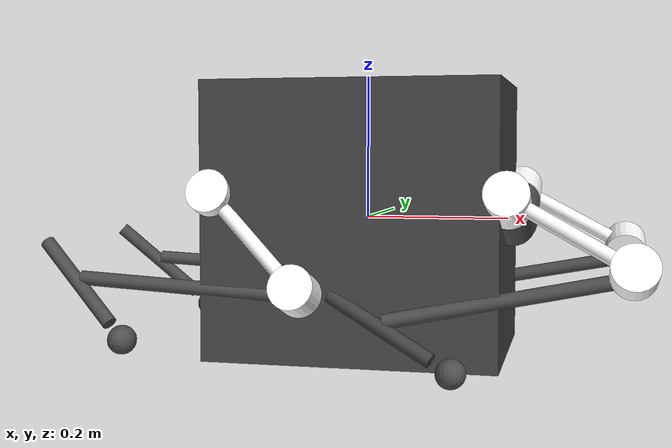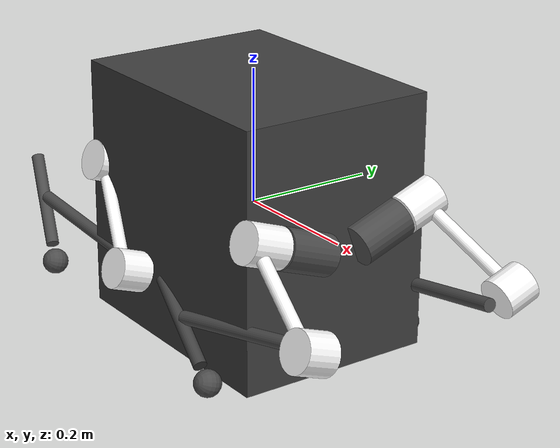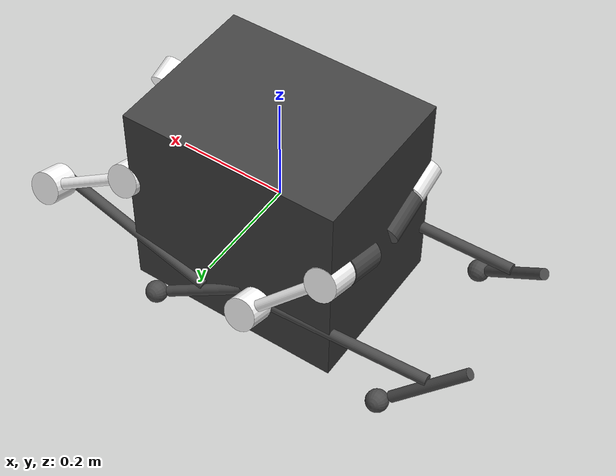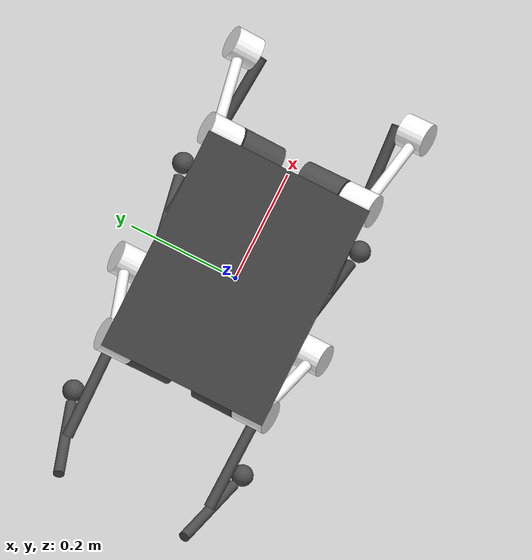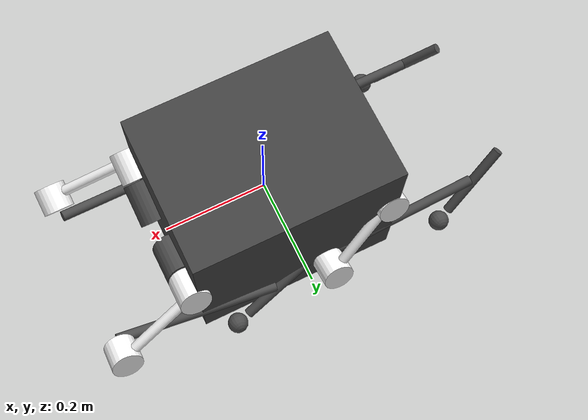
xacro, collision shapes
<?xml version="1.0" encoding="utf-8"?>
<robot xmlns:xacro="http://www.ros.org/wiki/xacro" name="husky">

  <!--aug 14 crouched husky no walls-->

  <xacro:arg name="robot_type" default="husky"/>

  <xacro:property name="motor_damping" value="0" />
  <xacro:property name="free_joint_damping" value="0" />

  <xacro:property name="motor_sfriction" value="0" />
  <xacro:property name="free_joint_sfriction" value="0" />

  <xacro:property name="efflim" value="33.5" />

  <xacro:property name="r_hip_frontal_ipos" value="${-10*pi/180}" />
  <xacro:property name="r_hip_frontal_lowlim" value="${-10*pi/180}" />
  <xacro:property name="r_hip_frontal_uplim" value="${-10*pi/180}" />
  <xacro:property name="l_hip_frontal_ipos" value="${100*pi/180}" />
  <xacro:property name="l_hip_frontal_lowlim" value="${100*pi/180}" />
  <xacro:property name="l_hip_frontal_uplim" value="${100*pi/180}" />

  <xacro:property name="r_axis" value="1" />
  <xacro:property name="l_axis" value="1" />

  <gazebo>
  <plugin filename="liblegged_hw_sim.so" name="gazebo_ros_control">
    <robotNamespace>/</robotNamespace>
    <robotParam>legged_robot_description</robotParam>
    <robotSimType>legged_gazebo/LeggedHWSim</robotSimType>
  </plugin>

  <plugin filename="libgazebo_ros_p3d.so" name="p3d_base_controller">
    <alwaysOn>true</alwaysOn>
    <updateRate>1000.0</updateRate>
    <bodyName>base</bodyName>
    <topicName>ground_truth/state</topicName>
    <gaussianNoise>0</gaussianNoise>
    <frameName>world</frameName>
    <xyzOffsets>0 0 0</xyzOffsets>
    <rpyOffsets>0 0 0</rpyOffsets>
  </plugin>
  </gazebo>

  <!-- Imu is fixed to the base link -->
  <joint name="unitree_imu_joint" type="fixed">
    <origin rpy="0. 0. 0." xyz="0. 0. 0."/>
    <parent link="base"/>
    <child link="unitree_imu"/>
  </joint>
  <!-- Imu link -->
  <link name="unitree_imu">
    <inertial>
      <mass value="0.01"/>
      <origin rpy="0 0 0" xyz="0 0 0"/>
      <inertia ixx="0.000001" ixy="0" ixz="0" iyy="0.000001" iyz="0" izz="0.000001"/>
    </inertial>
    <visual>
      <origin rpy="0 0 0" xyz="0 0 0"/>
      <geometry>
        <box size="0.015 0.015 0.004"/>
      </geometry>
    </visual>
  </link>
  <gazebo reference="unitree_imu">
    <material>Gazebo/Orange</material>
  </gazebo>
  <gazebo reference="unitree_imu_joint">
    <disableFixedJointLumping>true</disableFixedJointLumping>
  </gazebo>

  <joint name="RF_HAA" type="revolute">
    <parent link="base"/>
    <child link="RF_hip"/>
    <origin rpy="-1.5708 ${r_hip_frontal_ipos} -1.5708"    xyz="0.2087 -0.045 0.0001"/>
    <axis xyz="0.0 0.0 1.0" />
    <dynamics damping="${motor_damping}" friction="${motor_sfriction}"/>
    <limit effort="${efflim}" lower="${r_hip_frontal_lowlim}" upper="${r_hip_frontal_uplim}" velocity="8.7267"/>
  </joint>

  <joint name="LF_HAA" type="revolute">
    <parent link="base"/>
    <child link="LF_hip"/>
    <origin rpy="-1.5708 ${l_hip_frontal_ipos} -1.5708"    xyz="0.2087 0.045 0.0001"/>
    <axis xyz="0.0 0.0 1.0" />
    <dynamics damping="${motor_damping}" friction="${motor_sfriction}"/>
    <limit effort="${efflim}" lower="${l_hip_frontal_lowlim}" upper="${l_hip_frontal_uplim}" velocity="8.7267"/>
  </joint>

  <joint name="LH_HAA" type="revolute">
    <parent link="base"/>
    <child link="LH_hip"/>
    <origin rpy="-1.5708 ${l_hip_frontal_ipos} -1.5708"    xyz="-0.1862 0.045 0.0002"/>
    <axis xyz="0 0 1" />
    <dynamics damping="${motor_damping}" friction="${motor_sfriction}"/>
    <limit effort="${efflim}" lower="${l_hip_frontal_lowlim}" upper="${l_hip_frontal_uplim}" velocity="8.7267"/>
  </joint>

  <joint name="RH_HAA" type="revolute">
    <parent link="base"/>
    <child link="RH_hip"/>
    <origin rpy="-1.5708 ${r_hip_frontal_ipos} -1.5708"    xyz="-0.1862 -0.045 0.0002"/>
    <axis xyz="0 0 1" />
    <dynamics damping="${motor_damping}" friction="${motor_sfriction}"/>
    <limit effort="${efflim}" lower="${r_hip_frontal_lowlim}" upper="${r_hip_frontal_uplim}" velocity="8.7267"/>
  </joint>

  <xacro:property name="fr_hip_sagittal_ipos" value="-2.0944" />
  <xacro:property name="fr_hip_sagittal_lowlim" value="-0.7854" />
  <xacro:property name="fr_hip_sagittal_uplim" value="0" />
  <xacro:property name="fl_hip_sagittal_ipos" value="-1.0472" />
  <xacro:property name="fl_hip_sagittal_lowlim" value="0" />
  <xacro:property name="fl_hip_sagittal_uplim" value="0.7854" />

  <xacro:property name="br_hip_sagittal_ipos" value="-2.356" />
  <xacro:property name="br_hip_sagittal_lowlim" value="-0.7854" />
  <xacro:property name="br_hip_sagittal_uplim" value="0" />
  <xacro:property name="bl_hip_sagittal_ipos" value="-0.7854" />
  <xacro:property name="bl_hip_sagittal_lowlim" value="0" />
  <xacro:property name="bl_hip_sagittal_uplim" value="0.7854" />

  <joint name="RF_HFE" type="revolute">
    <parent link="RF_hip"/>
    <child link="RF_thigh"/>
    <origin rpy="-1.5708 ${fr_hip_sagittal_ipos} -1.5708"   xyz="0.1031 0.0 0.0"/>
    <axis xyz="0.0 0 ${r_axis}" />
    <dynamics damping="${motor_damping}" friction="${motor_sfriction}"/>
    <limit effort="${efflim}" lower="${fr_hip_sagittal_lowlim}" upper="${fr_hip_sagittal_uplim}" velocity="8.7267"/>
  </joint>

  <joint name="LF_HFE" type="revolute">
    <parent link="LF_hip"/>
    <child link="LF_thigh"/>
    <origin rpy="-1.5708 ${fl_hip_sagittal_ipos} -1.5708"   xyz="0.1031 0.0 0.0"/>
    <axis xyz="0 0.0 ${l_axis}" />
    <dynamics damping="${motor_damping}" friction="${motor_sfriction}"/>
    <limit effort="${efflim}" lower="${fl_hip_sagittal_lowlim}" upper="${fl_hip_sagittal_uplim}" velocity="8.7267"/>
  </joint>

  <joint name="LH_HFE" type="revolute">
    <parent link="LH_hip"/>
    <child link="LH_thigh"/>
    <origin rpy="-1.5708 ${bl_hip_sagittal_ipos} -1.5708"   xyz="0.1031 0.0 0.0"/>
    <axis xyz="0.0 0.0 ${l_axis}" />
    <dynamics damping="${motor_damping}" friction="${motor_sfriction}"/>
    <limit effort="${efflim}" lower="${bl_hip_sagittal_lowlim}" upper="${bl_hip_sagittal_uplim}" velocity="8.7267"/>
  </joint>

  <joint name="RH_HFE" type="revolute">
    <parent link="RH_hip"/>
    <child link="RH_thigh"/>
    <origin rpy="-1.5708 ${br_hip_sagittal_ipos} -1.5708"   xyz="0.1031 0.0 0.0"/>
    <axis xyz="0.0 0 ${r_axis}" />
    <dynamics damping="${motor_damping}" friction="${motor_sfriction}"/>
    <limit effort="${efflim}" lower="${br_hip_sagittal_lowlim}" upper="${br_hip_sagittal_uplim}" velocity="8.7267"/>
  </joint>

  <xacro:property name="r_knee_ipos" value="-2.4113" />
  <xacro:property name="r_knee_lowlim" value="-0." />
  <xacro:property name="r_knee_uplim" value="1.0472" />
  <xacro:property name="l_knee_ipos" value="2.4113" />
  <xacro:property name="l_knee_lowlim" value="-1.0472" />
  <xacro:property name="l_knee_uplim" value="0." />

  <joint name="RF_KFE" type="revolute">
    <parent link="RF_thigh"/>
    <child link="RF_calf"/>
    <origin rpy="0 0 ${r_knee_ipos}"   xyz="0.18 0.0 -0.0431"/>
    <axis xyz="0.0 0.0 ${r_axis}" />
    <dynamics damping="${motor_damping}" friction="${motor_sfriction}"/>
    <limit effort="${efflim}" lower="${r_knee_lowlim}" upper="${r_knee_uplim}" velocity="8.7267"/>
  </joint>

  <joint name="LF_KFE" type="revolute">
    <parent link="LF_thigh"/>
    <child link="LF_calf"/>
    <origin rpy="0 0 ${l_knee_ipos}"   xyz="0.18 0.0 -0.0431"/>
    <axis xyz="0.0 0.0 ${l_axis}" />
    <dynamics damping="${motor_damping}" friction="${motor_sfriction}"/>
    <limit effort="${efflim}" lower="${l_knee_lowlim}" upper="${l_knee_uplim}" velocity="8.7267"/>
  </joint>

  <joint name="LH_KFE" type="revolute">
    <parent link="LH_thigh"/>
    <child link="LH_calf"/>
    <origin rpy="0 0 ${l_knee_ipos}"   xyz="0.18 0.0 -0.0431"/>
    <axis xyz="0.0 0.0 ${l_axis}" />
    <dynamics damping="${motor_damping}" friction="${motor_sfriction}"/>
    <limit effort="${efflim}" lower="${l_knee_lowlim}" upper="${l_knee_uplim}" velocity="8.7267"/>
  </joint>

  <joint name="RH_KFE" type="revolute">
    <parent link="RH_thigh"/>
    <child link="RH_calf"/>
    <origin rpy="0 0 ${r_knee_ipos}"   xyz="0.18 0.0 -0.0431"/>
    <axis xyz="0.0 0.0 ${r_axis}" />
    <dynamics damping="${motor_damping}" friction="${motor_sfriction}"/>
    <limit effort="${efflim}" lower="${r_knee_lowlim}" upper="${r_knee_uplim}" velocity="8.7267"/>
  </joint>

  <!--ANKLES-->

  <xacro:property name="l_ankle_lowlim" value="-1.5708" />
  <xacro:property name="l_ankle_uplim" value="1.5708" />
  <xacro:property name="r_ankle_lowlim" value="-1.5708" />
  <xacro:property name="r_ankle_uplim" value="1.5708" />

  <!--REAL FOOT SECTION 1/3 (COMMENT THIS IN, COMMENT BELOW OUT)-->
  <joint name="RF_ankle" type="revolute">
    <parent link="RF_calf"/>
    <child link="RF_fut"/>
    <origin rpy="0 0 ${l_knee_ipos}"   xyz="0.333 0.0 0.0"/>
    <axis xyz="0.0 0.0 1.0" />
    <dynamics damping="${free_joint_damping}" friction="${motor_sfriction}"/>
    <limit effort="${efflim}" lower="${r_ankle_lowlim}" upper="${r_ankle_uplim}" velocity="8.7267"/>
  </joint>

  <joint name="LF_ankle" type="revolute">
    <parent link="LF_calf"/>
    <child link="LF_fut"/>
    <origin rpy="0 0 ${r_knee_ipos}"   xyz="0.333 0.0 0.0"/>
    <axis xyz="0.0 0.0 1.0" />
    <dynamics damping="${free_joint_damping}" friction="${motor_sfriction}"/>
    <limit effort="${efflim}" lower="${l_ankle_lowlim}" upper="${l_ankle_uplim}" velocity="8.7267"/>
  </joint>

  <joint name="LH_ankle" type="revolute">
    <parent link="LH_calf"/>
    <child link="LH_fut"/>
    <origin rpy="0 0 ${r_knee_ipos}"   xyz="0.333 0.0 0.0"/>
    <axis xyz="0.0 0.0 1.0" />
    <dynamics damping="${free_joint_damping}" friction="${motor_sfriction}"/>
    <limit effort="${efflim}" lower="${l_ankle_lowlim}" upper="${l_ankle_uplim}" velocity="8.7267"/>
  </joint>

  <joint name="RH_ankle" type="revolute">
    <parent link="RH_calf"/>
    <child link="RH_fut"/>
    <origin rpy="0 0 ${l_knee_ipos}"   xyz="0.333 0.0 0.0"/>
    <axis xyz="0.0 0.0 1.0" />
    <dynamics damping="${free_joint_damping}" friction="${motor_sfriction}"/>
    <limit effort="${efflim}" lower="${r_ankle_lowlim}" upper="${r_ankle_uplim}" velocity="8.7267"/>
  </joint>

  <joint name="RF_foot_fixed" type="fixed">
    <parent link="RF_fut"/>
    <child link="RF_FOOT"/>
    <origin rpy="0 0 0"   xyz="0.0 0.0 0.0"/>
  </joint>

  <joint name="LF_foot_fixed" type="fixed">
    <parent link="LF_fut"/>
    <child link="LF_FOOT"/>
    <origin rpy="0 0 0"   xyz="0.0 0.0 0.0"/>
  </joint>

  <joint name="LH_foot_fixed" type="fixed">
    <parent link="LH_fut"/>
    <child link="LH_FOOT"/>
    <origin rpy="0 0 0"   xyz="0.0 0.0 0.0"/>
  </joint>

  <joint name="RH_foot_fixed" type="fixed">
    <parent link="RH_fut"/>
    <child link="RH_FOOT"/>
    <origin rpy="0 0 0"   xyz="0.0 0.0 0.0"/>
  </joint>
  -->
  <!--REAL FOOT SECTION END-->

  <!--NUB FOOT SECTION (COMMENT THIS IN, COMMENT ABOVE OUT)-->
  <!--NUB FOOT SECTION END-->

  <gazebo reference="RF_foot_fixed">
    <disableFixedJointLumping>true</disableFixedJointLumping>
  </gazebo>

  <gazebo reference="LF_foot_fixed">
    <disableFixedJointLumping>true</disableFixedJointLumping>
  </gazebo>

  <gazebo reference="LH_foot_fixed">
    <disableFixedJointLumping>true</disableFixedJointLumping>
  </gazebo>

  <gazebo reference="RH_foot_fixed">
    <disableFixedJointLumping>true</disableFixedJointLumping>
  </gazebo>

  <!--LINKS-->
  <link name="base">
    <inertial>
      <mass value="3.1895"/>
      <origin rpy="0.0 0.0 -1.5708" xyz="-0.0301 -0.0001 0.0241"/>
      <inertia ixx="0.0170990623" ixy="3.09e-08" ixz="-5.394e-07" iyy="0.0115476717" iyz="4.77948e-05" izz="0.0268461573"/>
    </inertial>
    <collision>
      <origin rpy="0 0 0" xyz="0 0 0"/>
      <geometry>
        <box size="0.4 0.3 0.38"/>
      </geometry>
    </collision>
    <visual name="base_visual">
      <origin rpy="0.0 0.0 -1.571" xyz="0.0 0.0 0.0"/>
      <geometry>
        <mesh filename="package://husky_description/meshes/body_link.STL" scale="1 1 1"/>
      </geometry>
      <material name="">
        <color rgba="0.251 0.251 0.251 1.0"/>
      </material>
    </visual>
  </link>

  <xacro:property name="hip_ix" value="0.02" />
  <xacro:property name="hip_length" value="0.08" />
  <xacro:property name="hip_radius" value="0.03" />

  <link name="RF_hip">
    <inertial>
      <mass value="0.0431"/>
      <origin rpy="3.1416 0.0 0.0" xyz="0.0236 0.0001 0.003"/>
      <inertia ixx="9.9689e-06" ixy="7.49e-08" ixz="-2.3932e-06" iyy="2.49545e-05" iyz="5.1e-09" izz="2.81284e-05"/>
    </inertial>
    <collision>
      <origin rpy="0.0 1.5708 0.0" xyz="${hip_ix} 0 0"/>
      <geometry>
        <cylinder length="${hip_length}" radius="${hip_radius}"/>
      </geometry>
    </collision>
    <visual name="RF_hip_visual">
      <origin rpy="3.1416 0.0 0.0" xyz="0.0 0.0 0.0"/>
      <geometry>
        <mesh filename="package://husky_description/meshes/fr_hip.STL" scale="1 1 1"/>
      </geometry>
      <material name="">
        <color rgba="0.298 0.298 0.298 1.0"/>
      </material>
    </visual>
  </link>

  <link name="LF_hip">
    <inertial>
      <mass value="0.0431"/>
      <origin rpy="3.1416 0.0 0.0" xyz="0.0236 0.0001 0.003"/>
      <inertia ixx="9.9689e-06" ixy="7.49e-08" ixz="-2.3932e-06" iyy="2.49545e-05" iyz="5.1e-09" izz="2.81284e-05"/>
    </inertial>
    <collision>
      <origin rpy="0.0 1.5708 0.0" xyz="${hip_ix} 0 0"/>
      <geometry>
        <cylinder length="${hip_length}" radius="${hip_radius}"/>
      </geometry>
    </collision>
    <visual name="LF_hip_visual">
      <origin rpy="3.1416 0.0 0.0" xyz="0.0 0.0 0.0"/>
      <geometry>
        <mesh filename="package://husky_description/meshes/bl_hip.STL" scale="1 1 1"/>
      </geometry>
      <material name="">
        <color rgba="0.298 0.298 0.298 1.0"/>
      </material>
    </visual>
  </link>

  <link name="LH_hip">
    <inertial>
      <mass value="0.0431"/>
      <origin rpy="3.1416 0.0 0.0" xyz="0.0236 0.0001 0.003"/>
      <inertia ixx="9.9689e-06" ixy="7.49e-08" ixz="-2.3932e-06" iyy="2.49545e-05" iyz="5.1e-09" izz="2.81284e-05"/>
    </inertial>
    <collision>
      <origin rpy="0.0 1.5708 0.0" xyz="${hip_ix} 0 0"/>
      <geometry>
        <cylinder length="${hip_length}" radius="${hip_radius}"/>
      </geometry>
    </collision>
    <visual name="LH_hip_visual">
      <origin rpy="3.1416 0.0 0.0" xyz="0.0 0.0 0.0"/>
      <geometry>
        <mesh filename="package://husky_description/meshes/bl_hip.STL" scale="1 1 1"/>
      </geometry>
      <material name="">
        <color rgba="0.298 0.298 0.298 1.0"/>
      </material>
    </visual>
  </link>

  <link name="RH_hip">
    <inertial>
      <mass value="0.0431"/>
      <origin rpy="3.1416 0.0 0.0" xyz="0.0236 0.0001 0.003"/>
      <inertia ixx="9.9689e-06" ixy="7.49e-08" ixz="-2.3932e-06" iyy="2.49545e-05" iyz="5.1e-09" izz="2.81284e-05"/>
    </inertial>
    <collision>
      <origin rpy="0.0 1.5708 0.0" xyz="${hip_ix} 0 0"/>
      <geometry>
        <cylinder length="${hip_length}" radius="${hip_radius}"/>
      </geometry>
    </collision>
    <visual name="RH_hip_visual">
      <origin rpy="3.1416 0.0 0.0" xyz="0.0 0.0 0.0"/>
      <geometry>
        <mesh filename="package://husky_description/meshes/fr_hip.STL" scale="1 1 1"/>
      </geometry>
      <material name="">
        <color rgba="0.298 0.298 0.298 1.0"/>
      </material>
    </visual>
  </link>

  <gazebo reference="RF_hip">
    <mu1>0.2</mu1>
    <mu2>0.2</mu2>
    <material>Gazebo/DarkGrey</material>
  </gazebo>
  <gazebo reference="LF_hip">
    <mu1>0.2</mu1>
    <mu2>0.2</mu2>
    <material>Gazebo/DarkGrey</material>
  </gazebo>
  <gazebo reference="LH_hip">
    <mu1>0.2</mu1>
    <mu2>0.2</mu2>
    <material>Gazebo/DarkGrey</material>
  </gazebo>
  <gazebo reference="RH_hip">
    <mu1>0.2</mu1>
    <mu2>0.2</mu2>
    <material>Gazebo/DarkGrey</material>
  </gazebo>

  <xacro:property name="femur_ix" value="0.09" />
  <xacro:property name="femur_length" value="0.20" />
  <xacro:property name="femur_radius" value="0.01" />

  <xacro:property name="femur_n1_iz" value="-0.01" />
  <xacro:property name="femur_n1_length" value="0.06" />
  <xacro:property name="femur_n1_radius" value="0.03" />

  <xacro:property name="femur_n2_ix" value="0.18" />
  <xacro:property name="femur_n2_iz" value="-0.005" />
  <xacro:property name="femur_n2_length" value="0.05" />
  <xacro:property name="femur_n2_radius" value="0.03" />

  <link name="RF_thigh">
    <inertial>
      <mass value="0.3189"/>
      <origin rpy="0.0 0.0 0.0" xyz="0.1027 0.0 0.0"/>
      <inertia ixx="4.50707e-05" ixy="-1e-10" ixz="1.78e-08" iyy="9.67208e-05" iyz="4.87e-08" izz="6.39767e-05"/>
    </inertial>
    <collision>
      <origin rpy="0.0 0.0 0.0" xyz="0 0 ${femur_n1_iz}"/>
      <geometry>
        <cylinder length="${femur_n1_length}" radius="${femur_n1_radius}"/>
      </geometry>
    </collision>
    <collision>
      <origin rpy="0.0 1.5708 0.0" xyz="${femur_ix} 0 0"/>
      <geometry>
        <cylinder length="${femur_length}" radius="${femur_radius}"/>
      </geometry>
    </collision>
    <collision>
      <origin rpy="0.0 0.0 0.0" xyz="${femur_n2_ix} 0 ${femur_n2_iz}"/>
      <geometry>
        <cylinder length="${femur_n2_length}" radius="${femur_n2_radius}"/>
      </geometry>
    </collision>
    <visual name="RF_thigh_visual">
      <origin rpy="-1.5708 0.0 0.0" xyz="0.0 0.0 0.0"/>
      <geometry>
        <mesh filename="package://husky_description/meshes/fr_femur.STL" scale="1 1 1"/>
      </geometry>
      <material name="">
        <color rgba="1.0 1.0 1.0 1.0"/>
      </material>
    </visual>
  </link>

  <link name="LF_thigh">
    <inertial>
      <mass value="0.3189"/>
      <origin rpy="0.0 0.0 0.0" xyz="0.1027 0.0 0.0"/>
      <inertia ixx="4.50707e-05" ixy="-1e-10" ixz="1.78e-08" iyy="9.67208e-05" iyz="4.87e-08" izz="6.39767e-05"/>
    </inertial>
    <collision>
      <origin rpy="0.0 0.0 0.0" xyz="0 0 ${femur_n1_iz}"/>
      <geometry>
        <cylinder length="${femur_n1_length}" radius="${femur_n1_radius}"/>
      </geometry>
    </collision>
    <collision>
      <origin rpy="0.0 1.5708 0.0" xyz="${femur_ix} 0 0"/>
      <geometry>
        <cylinder length="${femur_length}" radius="${femur_radius}"/>
      </geometry>
    </collision>
    <collision>
      <origin rpy="0.0 0.0 0.0" xyz="${femur_n2_ix} 0 ${femur_n2_iz}"/>
      <geometry>
        <cylinder length="${femur_n2_length}" radius="${femur_n2_radius}"/>
      </geometry>
    </collision>
    <visual name="LF_thigh_visual">
      <origin rpy="0 0.0 0.0" xyz="0.0 0.0 0.0"/>
      <geometry>
        <mesh filename="package://husky_description/meshes/bl_femur.STL" scale="1 1 1"/>
      </geometry>
      <material name="">
        <color rgba="1.0 1.0 1.0 1.0"/>
      </material>
    </visual>
  </link>

  <link name="LH_thigh">
    <inertial>
      <mass value="0.3189"/>
      <origin rpy="0.0 0.0 0.0" xyz="0.1027 0.0 0.0"/>
      <inertia ixx="4.50707e-05" ixy="-1e-10" ixz="1.78e-08" iyy="9.67208e-05" iyz="4.87e-08" izz="6.39767e-05"/>
    </inertial>
    <collision>
      <origin rpy="0.0 0.0 0.0" xyz="0 0 ${femur_n1_iz}"/>
      <geometry>
        <cylinder length="${femur_n1_length}" radius="${femur_n1_radius}"/>
      </geometry>
    </collision>
    <collision>
      <origin rpy="0.0 1.5708 0.0" xyz="${femur_ix} 0 0"/>
      <geometry>
        <cylinder length="${femur_length}" radius="${femur_radius}"/>
      </geometry>
    </collision>
    <collision>
      <origin rpy="0.0 0.0 0.0" xyz="${femur_n2_ix} 0 ${femur_n2_iz}"/>
      <geometry>
        <cylinder length="${femur_n2_length}" radius="${femur_n2_radius}"/>
      </geometry>
    </collision>
    <visual name="LH_thigh_visual">
      <origin rpy="0 0.0 0.0" xyz="0.0 0.0 0.0"/>
      <geometry>
        <mesh filename="package://husky_description/meshes/bl_femur.STL" scale="1 1 1"/>
      </geometry>
      <material name="">
        <color rgba="1.0 1.0 1.0 1.0"/>
      </material>
    </visual>
  </link>

  <link name="RH_thigh">
    <inertial>
      <mass value="0.3189"/>
      <origin rpy="0.0 0.0 0.0" xyz="0.1027 0.0 0.0"/>
      <inertia ixx="4.50707e-05" ixy="-1e-10" ixz="1.78e-08" iyy="9.67208e-05" iyz="4.87e-08" izz="6.39767e-05"/>
    </inertial>
    <collision>
      <origin rpy="0.0 0.0 0.0" xyz="0 0 ${femur_n1_iz}"/>
      <geometry>
        <cylinder length="${femur_n1_length}" radius="${femur_n1_radius}"/>
      </geometry>
    </collision>
    <collision>
      <origin rpy="0.0 1.5708 0.0" xyz="${femur_ix} 0 0"/>
      <geometry>
        <cylinder length="${femur_length}" radius="${femur_radius}"/>
      </geometry>
    </collision>
    <collision>
      <origin rpy="0.0 0.0 0.0" xyz="${femur_n2_ix} 0 ${femur_n2_iz}"/>
      <geometry>
        <cylinder length="${femur_n2_length}" radius="${femur_n2_radius}"/>
      </geometry>
    </collision>
    <visual name="RH_thigh_visual">
      <origin rpy="-1.5708 0.0 0.0" xyz="0.0 0.0 0.0"/>
      <geometry>
        <mesh filename="package://husky_description/meshes/fr_femur.STL" scale="1 1 1"/>
      </geometry>
      <material name="">
        <color rgba="1.0 1.0 1.0 1.0"/>
      </material>
    </visual>
  </link>

  <gazebo reference="RF_thigh">
    <mu1>0.2</mu1>
    <mu2>0.2</mu2>
    <self_collide>0</self_collide>
    <material>Gazebo/DarkGrey</material>
    <kp value="1000000.0"/>
    <kd value="100.0"/>
  </gazebo>
  <gazebo reference="LF_thigh">
    <mu1>0.2</mu1>
    <mu2>0.2</mu2>
    <self_collide>0</self_collide>
    <material>Gazebo/DarkGrey</material>
    <kp value="1000000.0"/>
    <kd value="100.0"/>
  </gazebo>
  <gazebo reference="LH_thigh">
    <mu1>0.2</mu1>
    <mu2>0.2</mu2>
    <self_collide>0</self_collide>
    <material>Gazebo/DarkGrey</material>
    <kp value="1000000.0"/>
    <kd value="100.0"/>
  </gazebo>
  <gazebo reference="RH_thigh">
    <mu1>0.2</mu1>
    <mu2>0.2</mu2>
    <self_collide>0</self_collide>
    <material>Gazebo/DarkGrey</material>
    <kp value="1000000.0"/>
    <kd value="100.0"/>
  </gazebo>

  <xacro:property name="tibia_ix" value="0.16" />
  <xacro:property name="tibia_length" value="0.32" />
  <xacro:property name="tibia_radius" value="0.01" />

  <link name="RF_calf">
    <inertial>
      <mass value="0.0478"/>
      <origin rpy="0 0.0 0.0" xyz="0.1087 0.0 -0.0029"/>
      <inertia ixx="8.4583e-06" ixy="9e-10" ixz="-1.2898e-06" iyy="4.69251e-05" iyz="-1.9e-09" izz="5.27944e-05"/>
    </inertial>
    <collision>
      <origin rpy="0.0 1.5708 0.0" xyz="${tibia_ix} 0 0"/>
      <geometry>
        <cylinder length="${tibia_length}" radius="${tibia_radius}"/>
      </geometry>
    </collision>
    <visual name="RF_calf_visual">
      <origin rpy="0 0.0 0.0" xyz="0.0 0.0 0.0"/>
      <geometry>
        <mesh filename="package://husky_description/meshes/fr_tibia.STL" scale="1 1 1"/>
      </geometry>
      <material name="">
        <color rgba="0.298 0.298 0.298 1.0"/>
      </material>
    </visual>
  </link>

  <link name="LF_calf">
    <inertial>
      <mass value="0.0478"/>
      <origin rpy="0 0.0 0.0" xyz="0.1087 -0.0 0.0029"/>
      <inertia ixx="8.4583e-06" ixy="-9e-10" ixz="1.2898e-06" iyy="4.69251e-05" iyz="-1.9e-09" izz="5.27944e-05"/>
    </inertial>
    <collision>
      <origin rpy="0.0 1.5708 0.0" xyz="${tibia_ix} 0 0"/>
      <geometry>
        <cylinder length="${tibia_length}" radius="${tibia_radius}"/>
      </geometry>
    </collision>
    <visual name="LF_calf_visual">
      <origin rpy="0 0.0 0.0" xyz="0.0 0.0 0.0"/>
      <geometry>
        <mesh filename="package://husky_description/meshes/fr_tibia.STL" scale="1 1 1"/>
      </geometry>
      <material name="">
        <color rgba="0.298 0.298 0.298 1.0"/>
      </material>
    </visual>
  </link>

  <link name="LH_calf">
    <inertial>
      <mass value="0.0478"/>
      <origin rpy="0 0.0 0.0" xyz="0.1087 -0.0 0.0029"/>
      <inertia ixx="8.4583e-06" ixy="-9e-10" ixz="1.2898e-06" iyy="4.69251e-05" iyz="-1.9e-09" izz="5.27944e-05"/>
    </inertial>
    <collision>
      <origin rpy="0.0 1.5708 0.0" xyz="${tibia_ix} 0 0"/>
      <geometry>
        <cylinder length="${tibia_length}" radius="${tibia_radius}"/>
      </geometry>
    </collision>
    <visual name="LH_calf_visual">
      <origin rpy="0 0.0 0.0" xyz="0.0 0.0 0.0"/>
      <geometry>
        <mesh filename="package://husky_description/meshes/fr_tibia.STL" scale="1 1 1"/>
      </geometry>
      <material name="">
        <color rgba="0.298 0.298 0.298 1.0"/>
      </material>
    </visual>
  </link>

  <link name="RH_calf">
    <inertial>
      <mass value="0.0478"/>
      <origin rpy="0 0.0 0.0" xyz="0.1087 0.0 -0.0029"/>
      <inertia ixx="8.4583e-06" ixy="9e-10" ixz="-1.2898e-06" iyy="4.69251e-05" iyz="-1.9e-09" izz="5.27944e-05"/>
    </inertial>
    <collision>
      <origin rpy="0.0 1.5708 0.0" xyz="${tibia_ix} 0 0"/>
      <geometry>
        <cylinder length="${tibia_length}" radius="${tibia_radius}"/>
      </geometry>
    </collision>
    <visual name="RH_calf_visual">
      <origin rpy="0 0.0 0.0" xyz="0.0 0.0 0.0"/>
      <geometry>
        <mesh filename="package://husky_description/meshes/fr_tibia.STL" scale="1 1 1"/>
      </geometry>
      <material name="">
        <color rgba="0.298 0.298 0.298 1.0"/>
      </material>
    </visual>
  </link>

  <gazebo reference="RF_calf">
    <mu1>0.6</mu1>
    <mu2>0.6</mu2>
    <self_collide>1</self_collide>
  </gazebo>
  <gazebo reference="LF_calf">
    <mu1>0.6</mu1>
    <mu2>0.6</mu2>
    <self_collide>1</self_collide>
  </gazebo>
  <gazebo reference="LH_calf">
    <mu1>0.6</mu1>
    <mu2>0.6</mu2>
    <self_collide>1</self_collide>
  </gazebo>
  <gazebo reference="RH_calf">
    <mu1>0.6</mu1>
    <mu2>0.6</mu2>
    <self_collide>1</self_collide>
  </gazebo>

  <!--REAL FOOT SECTION 2/3 (COMMENT THIS IN, COMMENT BELOW OUT)-->

  <xacro:property name="foot_ix" value="0.01" />
  <xacro:property name="foot_length" value="0.16" />
  <xacro:property name="foot_radius" value="0.01" />

  <xacro:property name="foot_sphere_ix" value="0.12" />
  <xacro:property name="foot_sphere_radius" value="0.02" />

  <link name="RF_fut">
    <inertial>
      <mass value="0.0716"/>
      <origin rpy="0.0 0.0 0.0" xyz="0.0528 -0.0 0.0"/>
      <inertia ixx="9.7391e-06" ixy="0.0" ixz="-0.0" iyy="4.80545e-05" iyz="-3e-09" izz="4.65431e-05"/>
    </inertial>
    <collision>
      <origin rpy="0.0 1.5708 0.0" xyz="${foot_ix} 0 0"/>
      <geometry>
        <cylinder length="${foot_length}" radius="${foot_radius}"/>
      </geometry>
    </collision>
    <visual name="RF_fut_visual">
      <origin rpy="0.0 0.0 0.0" xyz="0.0 0.0 0.0"/>
      <geometry>
        <mesh filename="package://husky_description/meshes/fr_foot.STL" scale="1 1 1"/>
      </geometry>
      <material name="">
        <color rgba="0.251 0.251 0.251 1.0"/>
      </material>
    </visual>
  </link>

  <link name="LF_fut">
    <inertial>
      <mass value="0.0716"/>
      <origin rpy="0.0 0.0 0.0" xyz="0.0528 0.0 -0.0"/>
      <inertia ixx="9.7391e-06" ixy="0.0" ixz="-0.0" iyy="4.80545e-05" iyz="-3e-09" izz="4.65431e-05"/>
    </inertial>
    <collision>
      <origin rpy="0.0 1.5708 0.0" xyz="${foot_ix} 0 0"/>
      <geometry>
        <cylinder length="${foot_length}" radius="${foot_radius}"/>
      </geometry>
    </collision>
    <visual name="LF_fut_visual">
      <origin rpy="0.0 0.0 0.0" xyz="0.0 0.0 0.0"/>
      <geometry>
        <mesh filename="package://husky_description/meshes/fr_foot.STL" scale="1 1 1"/>
      </geometry>
      <material name="">
        <color rgba="0.298 0.298 0.298 1.0"/>
      </material>
    </visual>
  </link>

  <link name="LH_fut">
    <inertial>
      <mass value="0.0716"/>
      <origin rpy="0.0 0.0 0.0" xyz="0.0528 0.0 -0.0"/>
      <inertia ixx="9.7391e-06" ixy="0.0" ixz="-0.0" iyy="4.80545e-05" iyz="-3e-09" izz="4.65431e-05"/>
    </inertial>
    <collision>
      <origin rpy="0.0 1.5708 0.0" xyz="${foot_ix} 0 0"/>
      <geometry>
        <cylinder length="${foot_length}" radius="${foot_radius}"/>
      </geometry>
    </collision>
    <visual name="LH_fut_visual">
      <origin rpy="0.0 0.0 0.0" xyz="0.0 0.0 0.0"/>
      <geometry>
        <mesh filename="package://husky_description/meshes/fr_foot.STL" scale="1 1 1"/>
      </geometry>
      <material name="">
        <color rgba="0.298 0.298 0.298 1.0"/>
      </material>
    </visual>
  </link>

  <link name="RH_fut">
    <inertial>
      <mass value="0.0716"/>
      <origin rpy="0.0 0.0 0.0" xyz="0.0528 0.0 0.0"/>
      <inertia ixx="9.7391e-06" ixy="0.0" ixz="-0.0" iyy="4.80545e-05" iyz="-3e-09" izz="4.65431e-05"/>
    </inertial>
    <collision>
      <origin rpy="0.0 1.5708 0.0" xyz="${foot_ix} 0 0"/>
      <geometry>
        <cylinder length="${foot_length}" radius="${foot_radius}"/>
      </geometry>
    </collision>
    <visual name="RH_fut_visual">
      <origin rpy="0.0 0.0 0.0" xyz="0.0 0.0 0.0"/>
      <geometry>
        <mesh filename="package://husky_description/meshes/fr_foot.STL" scale="1 1 1"/>
      </geometry>
      <material name="">
        <color rgba="0.298 0.298 0.298 1.0"/>
      </material>
    </visual>
  </link>

  <gazebo reference="RF_fut">
    <mu1>0.6</mu1>
    <mu2>0.6</mu2>
    <material>Gazebo/DarkGrey</material>
  </gazebo>
  <gazebo reference="LF_fut">
    <mu1>0.6</mu1>
    <mu2>0.6</mu2>
    <material>Gazebo/DarkGrey</material>
  </gazebo>
  <gazebo reference="LH_fut">
    <mu1>0.6</mu1>
    <mu2>0.6</mu2>
    <material>Gazebo/DarkGrey</material>
  </gazebo>
  <gazebo reference="RH_fut">
    <mu1>0.6</mu1>
    <mu2>0.6</mu2>
    <material>Gazebo/DarkGrey</material>
  </gazebo>
  -->
  <!--REAL FOOT SECTION END-->

  <!--NUB FOOT SECTION (COMMENT THIS IN, COMMENT ABOVE OUT)-->
  <!--NUB FOOT SECTION END-->

  <link name="RF_FOOT">
    <inertial>
      <mass value="0.06"/>
      <inertia ixx="9.600000000000001e-06" ixy="0.0" ixz="0.0" iyy="9.600000000000001e-06" iyz="0.0" izz="9.600000000000001e-06"/>
    </inertial>
    <collision>
      <origin rpy="0 0 0" xyz="${foot_sphere_ix} 0 0"/>
      <geometry>
        <sphere radius="${foot_sphere_radius}"/>
      </geometry>
    </collision>
  </link>

  <link name="LF_FOOT">
    <inertial>
      <mass value="0.06"/>
      <inertia ixx="9.600000000000001e-06" ixy="0.0" ixz="0.0" iyy="9.600000000000001e-06" iyz="0.0" izz="9.600000000000001e-06"/>
    </inertial>
    <collision>
      <origin rpy="0 0 0" xyz="${foot_sphere_ix} 0 0"/>
      <geometry>
        <sphere radius="${foot_sphere_radius}"/>
      </geometry>
    </collision>
  </link>

  <link name="LH_FOOT">
    <inertial>
      <mass value="0.06"/>
      <inertia ixx="9.600000000000001e-06" ixy="0.0" ixz="0.0" iyy="9.600000000000001e-06" iyz="0.0" izz="9.600000000000001e-06"/>
    </inertial>
    <collision>
      <origin rpy="0 0 0" xyz="${foot_sphere_ix} 0 0"/>
      <geometry>
        <sphere radius="${foot_sphere_radius}"/>
      </geometry>
    </collision>
  </link>

  <link name="RH_FOOT">
    <inertial>
      <mass value="0.06"/>
      <inertia ixx="9.600000000000001e-06" ixy="0.0" ixz="0.0" iyy="9.600000000000001e-06" iyz="0.0" izz="9.600000000000001e-06"/>
    </inertial>
    <collision>
      <origin rpy="0 0 0" xyz="${foot_sphere_ix} 0 0"/>
      <geometry>
        <sphere radius="${foot_sphere_radius}"/>
      </geometry>
    </collision>
  </link>

  <gazebo reference="RF_FOOT">
    <mu1>0.9</mu1>
    <mu2>0.9</mu2>
    <self_collide>1</self_collide>
    <material>Gazebo/DarkGrey</material>
    <kp value="1000000.0"/>
    <kd value="100.0"/>
  </gazebo>
  <gazebo reference="LF_FOOT">
    <mu1>0.9</mu1>
    <mu2>0.9</mu2>
    <self_collide>1</self_collide>
    <material>Gazebo/DarkGrey</material>
    <kp value="1000000.0"/>
    <kd value="100.0"/>
  </gazebo>
  <gazebo reference="LH_FOOT">
    <mu1>0.9</mu1>
    <mu2>0.9</mu2>
    <self_collide>1</self_collide>
    <material>Gazebo/DarkGrey</material>
    <kp value="1000000.0"/>
    <kd value="100.0"/>
  </gazebo>
  <gazebo reference="RH_FOOT">
    <mu1>0.9</mu1>
    <mu2>0.9</mu2>
    <self_collide>1</self_collide>
    <material>Gazebo/DarkGrey</material>
    <kp value="1000000.0"/>
    <kd value="100.0"/>
  </gazebo>

<!--dummy foot joint for friction, it does not work-->
  <!--dummy foot joint for friction-->

  <!--CONTROL ROD SECTION 1/2-->
  <!--CONTROL ROD SECTION END-->

  <transmission name="RF_HAA_trans">
    <type>transmission_interface/SimpleTransmission</type>
    <joint name="RF_HAA">
      <hardwareInterface>hardware_interface/EffortJointInterface</hardwareInterface>
    </joint>
    <actuator name="RF_HAA_motor">
      <hardwareInterface>hardware_interface/EffortJointInterface</hardwareInterface>
      <mechanicalReduction>1</mechanicalReduction>
    </actuator>
  </transmission>

  <transmission name="LF_HAA_trans">
    <type>transmission_interface/SimpleTransmission</type>
    <joint name="LF_HAA">
      <hardwareInterface>hardware_interface/EffortJointInterface</hardwareInterface>
    </joint>
    <actuator name="LF_HAA_motor">
      <hardwareInterface>hardware_interface/EffortJointInterface</hardwareInterface>
      <mechanicalReduction>1</mechanicalReduction>
    </actuator>
  </transmission>

  <transmission name="LH_HAA_trans">
    <type>transmission_interface/SimpleTransmission</type>
    <joint name="LH_HAA">
      <hardwareInterface>hardware_interface/EffortJointInterface</hardwareInterface>
    </joint>
    <actuator name="LH_HAA_motor">
      <hardwareInterface>hardware_interface/EffortJointInterface</hardwareInterface>
      <mechanicalReduction>1</mechanicalReduction>
    </actuator>
  </transmission>

 <transmission name="RH_HAA_trans">
    <type>transmission_interface/SimpleTransmission</type>
    <joint name="RH_HAA">
      <hardwareInterface>hardware_interface/EffortJointInterface</hardwareInterface>
    </joint>
    <actuator name="RH_HAA_motor">
      <hardwareInterface>hardware_interface/EffortJointInterface</hardwareInterface>
      <mechanicalReduction>1</mechanicalReduction>
    </actuator>
  </transmission>

 <transmission name="RF_HFE_trans">
    <type>transmission_interface/SimpleTransmission</type>
    <joint name="RF_HFE">
      <hardwareInterface>hardware_interface/EffortJointInterface</hardwareInterface>
    </joint>
    <actuator name="RF_HFE_motor">
      <hardwareInterface>hardware_interface/EffortJointInterface</hardwareInterface>
      <mechanicalReduction>1</mechanicalReduction>
    </actuator>
  </transmission>

  <transmission name="LF_HFE_trans">
    <type>transmission_interface/SimpleTransmission</type>
    <joint name="LF_HFE">
      <hardwareInterface>hardware_interface/EffortJointInterface</hardwareInterface>
    </joint>
    <actuator name="LF_HFE_motor">
      <hardwareInterface>hardware_interface/EffortJointInterface</hardwareInterface>
      <mechanicalReduction>1</mechanicalReduction>
    </actuator>
  </transmission>

  <transmission name="LH_HFE_trans">
    <type>transmission_interface/SimpleTransmission</type>
    <joint name="LH_HFE">
      <hardwareInterface>hardware_interface/EffortJointInterface</hardwareInterface>
    </joint>
    <actuator name="LH_HFE_motor">
      <hardwareInterface>hardware_interface/EffortJointInterface</hardwareInterface>
      <mechanicalReduction>1</mechanicalReduction>
    </actuator>
  </transmission>

  <transmission name="RH_HFE_trans">
    <type>transmission_interface/SimpleTransmission</type>
    <joint name="RH_HFE">
      <hardwareInterface>hardware_interface/EffortJointInterface</hardwareInterface>
    </joint>
    <actuator name="RH_HFE_motor">
      <hardwareInterface>hardware_interface/EffortJointInterface</hardwareInterface>
      <mechanicalReduction>1</mechanicalReduction>
    </actuator>
  </transmission>

  <transmission name="RF_KFE_trans">
    <type>transmission_interface/SimpleTransmission</type>
    <joint name="RF_KFE">
      <hardwareInterface>hardware_interface/EffortJointInterface</hardwareInterface>
    </joint>
    <actuator name="RF_KFE_motor">
      <hardwareInterface>hardware_interface/EffortJointInterface</hardwareInterface>
      <mechanicalReduction>1</mechanicalReduction>
    </actuator>
  </transmission>

  <transmission name="LF_KFE_trans">
    <type>transmission_interface/SimpleTransmission</type>
    <joint name="LF_KFE">
      <hardwareInterface>hardware_interface/EffortJointInterface</hardwareInterface>
    </joint>
    <actuator name="LF_KFE_motor">
      <hardwareInterface>hardware_interface/EffortJointInterface</hardwareInterface>
      <mechanicalReduction>1</mechanicalReduction>
    </actuator>
  </transmission>

  <transmission name="LH_KFE_trans">
    <type>transmission_interface/SimpleTransmission</type>
    <joint name="LH_KFE">
      <hardwareInterface>hardware_interface/EffortJointInterface</hardwareInterface>
    </joint>
    <actuator name="LH_KFE_motor">
      <hardwareInterface>hardware_interface/EffortJointInterface</hardwareInterface>
      <mechanicalReduction>1</mechanicalReduction>
    </actuator>
  </transmission>

  <transmission name="RH_KFE_trans">
    <type>transmission_interface/SimpleTransmission</type>
    <joint name="RH_KFE">
      <hardwareInterface>hardware_interface/EffortJointInterface</hardwareInterface>
    </joint>
    <actuator name="RH_KFE_motor">
      <hardwareInterface>hardware_interface/EffortJointInterface</hardwareInterface>
      <mechanicalReduction>1</mechanicalReduction>
    </actuator>
  </transmission>

  <!--REAL FOOT SECTION 3/3 (COMMENT THIS IN, NO NEED TO COMMENT OUT)-->
  <transmission name="RF_ankle_trans">
    <type>transmission_interface/SimpleTransmission</type>
    <joint name="RF_ankle">
      <hardwareInterface>hardware_interface/EffortJointInterface</hardwareInterface>
    </joint>
    <actuator name="RF_ankle_motor">
      <hardwareInterface>hardware_interface/EffortJointInterface</hardwareInterface>
      <mechanicalReduction>1</mechanicalReduction>
    </actuator>
  </transmission>

  <transmission name="LF_ankle_trans">
    <type>transmission_interface/SimpleTransmission</type>
    <joint name="LF_ankle">
      <hardwareInterface>hardware_interface/EffortJointInterface</hardwareInterface>
    </joint>
    <actuator name="LF_ankle_motor">
      <hardwareInterface>hardware_interface/EffortJointInterface</hardwareInterface>
      <mechanicalReduction>1</mechanicalReduction>
    </actuator>
  </transmission>

  <transmission name="LH_ankle_trans">
    <type>transmission_interface/SimpleTransmission</type>
    <joint name="LH_ankle">
      <hardwareInterface>hardware_interface/EffortJointInterface</hardwareInterface>
    </joint>
    <actuator name="LH_ankle_motor">
      <hardwareInterface>hardware_interface/EffortJointInterface</hardwareInterface>
      <mechanicalReduction>1</mechanicalReduction>
    </actuator>
  </transmission>

  <transmission name="RH_ankle_trans">
    <type>transmission_interface/SimpleTransmission</type>
    <joint name="RH_ankle">
      <hardwareInterface>hardware_interface/EffortJointInterface</hardwareInterface>
    </joint>
    <actuator name="RH_ankle_motor">
      <hardwareInterface>hardware_interface/EffortJointInterface</hardwareInterface>
      <mechanicalReduction>1</mechanicalReduction>
    </actuator>
  </transmission>
  -->
  <!--REAL FOOT SECTION END-->

  <!--CONTROL ROD SECTION 2/2-->
  <!--CONTROL ROD SECTION END-->

  <gazebo>
  <plugin name="RF_foot_fixed_mimic" filename="libroboticsgroup_gazebo_mimic_joint_plugin.so">
    <joint>RF_KFE</joint>
    <mimicJoint>RF_ankle</mimicJoint>
    <has_pid>"false"</has_pid>
    <multiplier>-1</multiplier>
    <offset>0</offset>
    <sensitiveness>0</sensitiveness>
    <maxEffort>15</maxEffort>
    <robotNamespace>/</robotNamespace>
  </plugin>

  <plugin name="LF_foot_fixed_mimic" filename="libroboticsgroup_gazebo_mimic_joint_plugin.so">
    <joint>LF_KFE</joint>
    <mimicJoint>LF_ankle</mimicJoint>
    <has_pid>"false"</has_pid>
    <multiplier>-1</multiplier>
    <offset>0</offset>
    <sensitiveness>0</sensitiveness>
    <maxEffort>15</maxEffort>
    <robotNamespace>/</robotNamespace>
  </plugin>

  <plugin name="RH_foot_fixed_mimic" filename="libroboticsgroup_gazebo_mimic_joint_plugin.so">
    <joint>RH_KFE</joint>
    <mimicJoint>RH_ankle</mimicJoint>
    <has_pid>"false"</has_pid>
    <multiplier>-1</multiplier>
    <offset>0</offset>
    <sensitiveness>0</sensitiveness>
    <maxEffort>15</maxEffort>
    <robotNamespace>/</robotNamespace>
  </plugin>

  <plugin name="LH_foot_fixed_mimic" filename="libroboticsgroup_gazebo_mimic_joint_plugin.so">
    <joint>LH_KFE</joint>
    <mimicJoint>LH_ankle</mimicJoint>
    <has_pid>"false"</has_pid>
    <multiplier>-1</multiplier>
    <offset>0</offset>
    <sensitiveness>0</sensitiveness>
    <maxEffort>15</maxEffort>
    <robotNamespace>/</robotNamespace>
  </plugin>

  <plugin name="fr_control_rod_mimic" filename="libroboticsgroup_gazebo_mimic_joint_plugin.so">
    <joint>RF_KFE</joint>
    <mimicJoint>fr_control_rod</mimicJoint>
    <has_pid>"false"</has_pid>
    <multiplier>1</multiplier>
    <offset>0</offset>
    <sensitiveness>0</sensitiveness>
    <maxEffort>1000</maxEffort>
    <robotNamespace>/</robotNamespace>
  </plugin>

  <plugin name="fl_control_rod_mimic" filename="libroboticsgroup_gazebo_mimic_joint_plugin.so">
    <joint>LF_KFE</joint>
    <mimicJoint>fl_control_rod</mimicJoint>
    <has_pid>"false"</has_pid>
    <multiplier>1</multiplier>
    <offset>0</offset>
    <sensitiveness>0</sensitiveness>
    <maxEffort>1000</maxEffort>
    <robotNamespace>/</robotNamespace>
  </plugin>

  <plugin name="br_control_rod_mimic" filename="libroboticsgroup_gazebo_mimic_joint_plugin.so">
    <joint>RH_KFE</joint>
    <mimicJoint>br_control_rod</mimicJoint>
    <has_pid>"false"</has_pid>
    <multiplier>1</multiplier>
    <offset>0</offset>
    <sensitiveness>0</sensitiveness>
    <maxEffort>1000</maxEffort>
    <robotNamespace>/</robotNamespace>
  </plugin>

  <plugin name="bl_control_rod_mimic" filename="libroboticsgroup_gazebo_mimic_joint_plugin.so">
    <joint>LH_KFE</joint>
    <mimicJoint>bl_control_rod</mimicJoint>
    <has_pid>"false"</has_pid>
    <multiplier>1</multiplier>
    <offset>0</offset>
    <sensitiveness>0</sensitiveness>
    <maxEffort>1000</maxEffort>
    <robotNamespace>/</robotNamespace>
  </plugin>

  </gazebo>

</robot>
